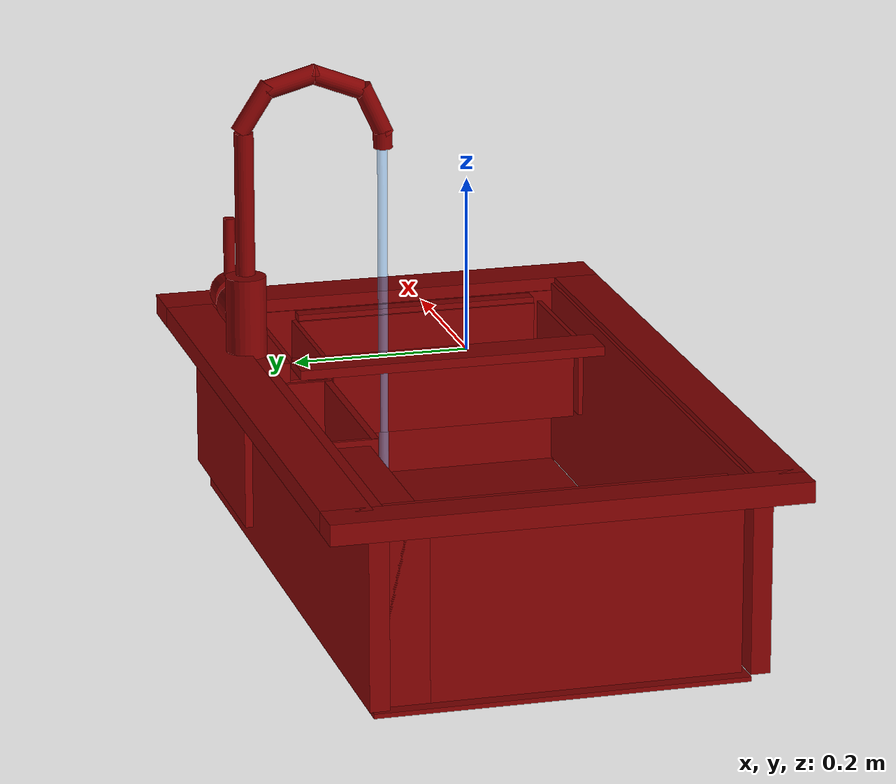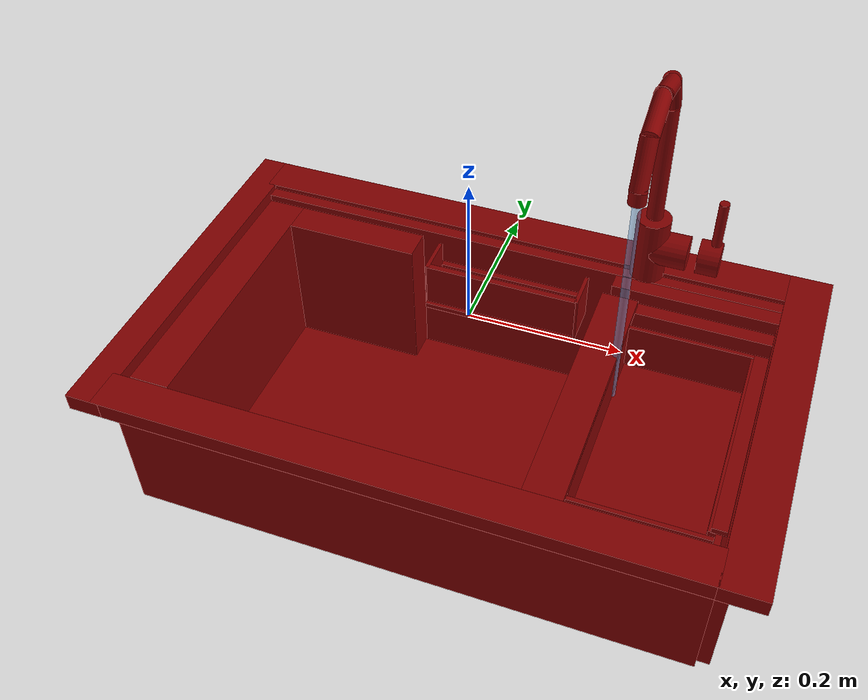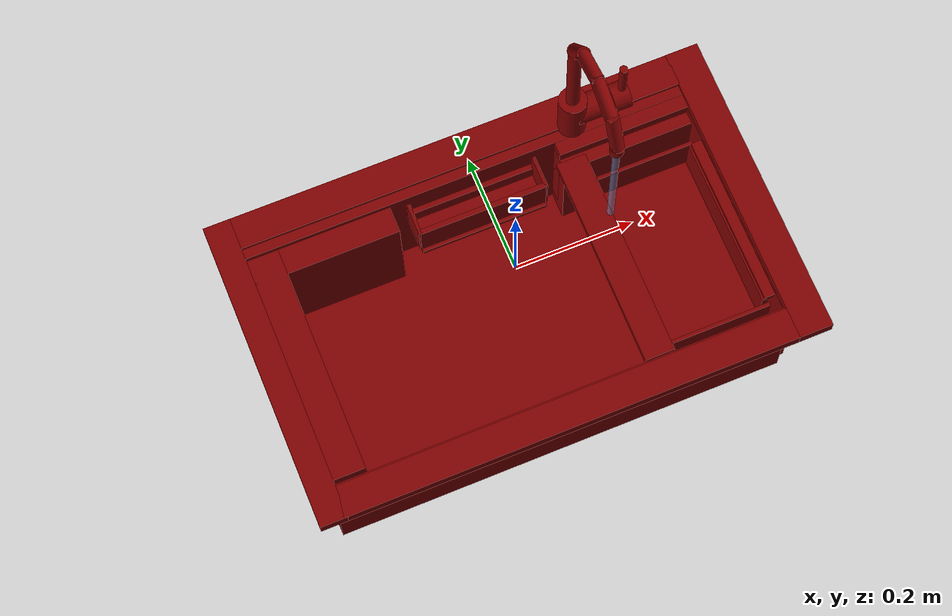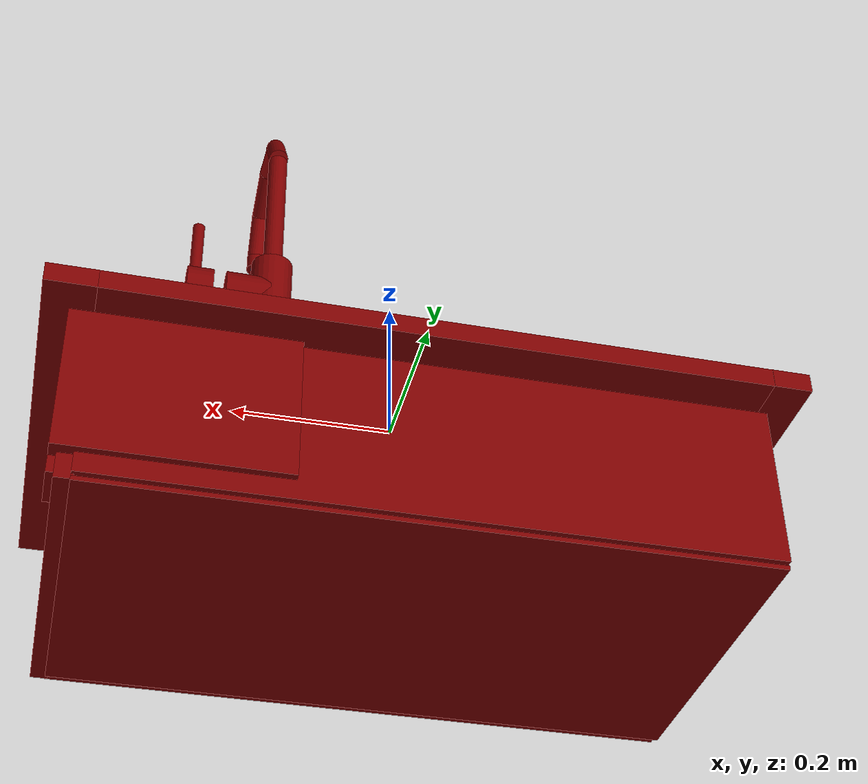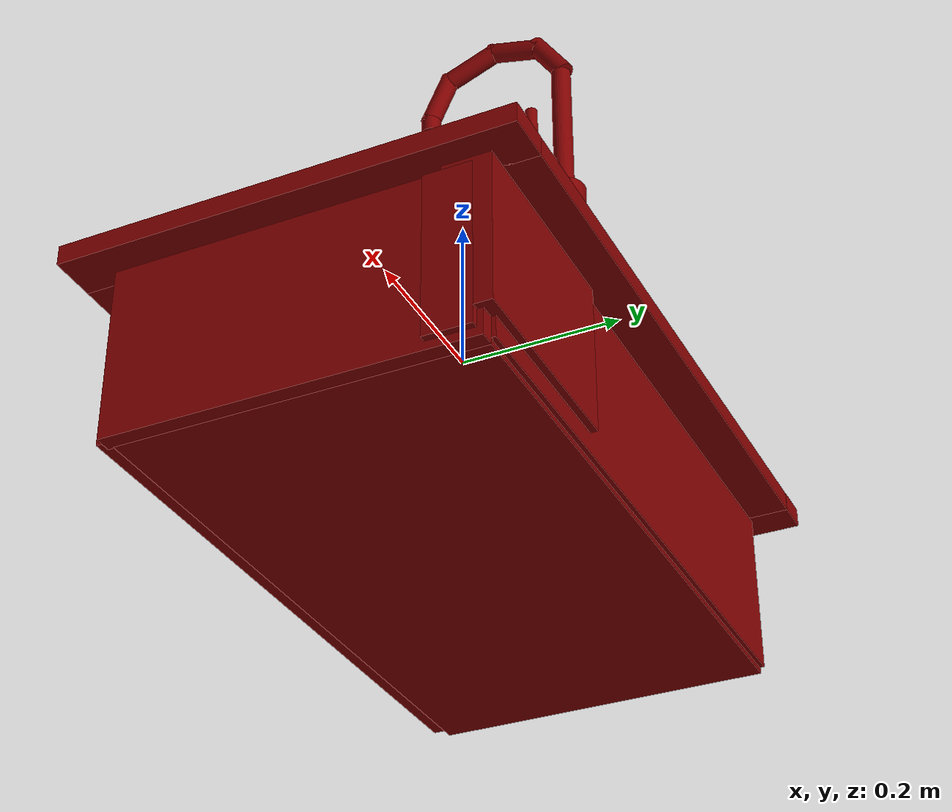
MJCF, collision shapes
<?xml version='1.0' encoding='UTF-8'?>
<mujoco model="model">
  <option timestep="0.002" gravity="0.0 0.0 -9.81"/>
  <compiler angle="radian"/>
  <asset>
    <mesh file="visuals/handle.obj" name="handle_vis"/>
    <mesh file="visuals/Body001.obj" name="Body001_vis"/>
    <mesh file="visuals/Shelf001.obj" name="Shelf001_vis"/>
    <mesh file="visuals/Shelf002.obj" name="Shelf002_vis"/>
    <mesh file="visuals/spout.obj" name="spout_vis"/>
    <texture file="visuals/T_BC001.png" name="Body001_material" type="2d"/>
    <material name="Body001_material" rgba="1 1 1 1.0" texture="Body001_material" shininess="0.141421377658844" specular="1"/>
    <texture file="visuals/T_BC001.png" name="handle_material" type="2d"/>
    <material name="handle_material" rgba="1 1 1 1.0" texture="handle_material" shininess="0.141421377658844" specular="1"/>
    <texture file="visuals/T_BC001.png" name="Shelf001_material" type="2d"/>
    <material name="Shelf001_material" rgba="1 1 1 1.0" texture="Shelf001_material" shininess="0.141421377658844" specular="1"/>
    <texture file="visuals/T_BC001.png" name="Shelf002_material" type="2d"/>
    <material name="Shelf002_material" rgba="1 1 1 1.0" texture="Shelf002_material" shininess="0.141421377658844" specular="1"/>
    <texture file="visuals/T_BC001.png" name="spout_material" type="2d"/>
    <material name="spout_material" rgba="1 1 1 1.0" texture="spout_material" shininess="0.141421377658844" specular="1"/>
  </asset>
  <default>
    <default class="visual">
      <geom conaffinity="0" contype="0" group="1" type="mesh"/>
    </default>
    <default class="collision">
      <geom group="0" rgba="0.5 0 0 0.5" solimp="0.998 0.998 0.001" solref="0.001 2"/>
    </default>
    <default class="spawn">
      <geom group="0" rgba="1 1 1 0.5" contype="0" conaffinity="0"/>
      <site group="0" rgba="1 1 1 0.5"/>
    </default>
    <default class="region">
      <geom group="1" conaffinity="0" contype="0" rgba="0 1 0 0"/>
    </default>
  </default>
  <worldbody>
    <body>
      <body name="object">
        <geom mesh="Body001_vis" type="mesh" solimp="0.998 0.998 0.001" solref="0.001 1" friction="0.95 0.3 0.1" class="visual" material="Body001_material"/>
        <geom class="collision" type="box" pos="-0.41402581 -0.00023080 -0.05207147" size="0.022894691675901413 0.2682405114173889 0.012045697309076786" quat="1.0 0.0 0.0 0.0"/>
        <geom class="collision" type="box" pos="0.40795222 -0.00023081 -0.05207147" size="0.028964372351765633 0.26824042201042175 0.012045692652463913" quat="1.0 0.0 0.0 0.0"/>
        <geom class="collision" type="box" pos="-0.01061450 -0.24163963 -0.05207147" size="0.3914196491241455 0.02683018147945404 0.01204568613320589" quat="1.0 0.0 0.0 0.0"/>
        <geom class="collision" type="box" pos="-0.01061450 0.23987053 -0.05207147" size="0.3914194405078888 0.027941973879933357 0.012045681476593018" quat="1.0 0.0 0.0 0.0"/>
        <geom class="collision" type="box" pos="-0.01061450 -0.22191751 -0.15760472" size="0.3914192318916321 0.011272481642663479 0.11095090955495834" quat="1.0 0.0 0.0 0.0"/>
        <geom class="collision" type="box" pos="0.38790286 -0.00379841 -0.16528009" size="0.010467687621712685 0.21606667339801788 0.10984964668750763" quat="1.0 0.0 0.0 0.0"/>
        <geom class="collision" type="box" pos="-0.36811498 0.00235081 -0.16112319" size="0.03185322880744934 0.203094482421875 0.10391531884670258" quat="1.0 0.0 0.0 0.0"/>
        <geom class="collision" type="box" pos="-0.01061420 0.00046252 -0.27352744" size="0.39141860604286194 0.2120686024427414 0.002776971086859703" quat="1.0 0.0 0.0 0.0"/>
        <geom class="collision" type="box" pos="-0.01061450 0.20614104 -0.15760472" size="0.3914184272289276 0.011272456496953964 0.11095070838928223" quat="1.0 0.0 0.0 0.0"/>
        <geom class="collision" type="cylinder" pos="0.18741572 0.21382920 0.00228175" size="0.02383415773510933 0.04755035787820816" quat="1.0 0.0 0.0 0.0"/>
        <geom class="collision" type="cylinder" pos="0.21505156 0.21382920 0.00228175" size="0.02383415773510933 0.024705450981855392" quat="0.7071068286895752 -0.0 0.7071067690849304 0.0"/>
        <geom class="collision" type="box" pos="-0.27097130 0.17762549 -0.16112319" size="0.12899693846702576 0.027818942442536354 0.1039150133728981" quat="1.0 0.0 0.0 0.0"/>
        <geom class="collision" type="box" pos="0.27775401 0.17762549 -0.16678700" size="0.12899692356586456 0.027818936854600906 0.09825118631124496" quat="1.0 0.0 0.0 0.0"/>
        <geom class="collision" type="box" pos="0.27775401 0.19877374 -0.14603704" size="0.12899689376354218 0.02781892940402031 0.09825116395950317" quat="1.0 0.0 0.0 0.0"/>
        <body name="handle">
          <joint axis="1.0 0.0 0.0" pos="0.26993331 0.21191886 0.00368081" limited="true" name="handle_temp_joint" type="hinge" range="-0.7853981633974483 0.7853981633974483" damping="0.5" frictionloss="1" armature="2"/>
          <joint axis="0.0 1.0 0.0" pos="0.26993331 0.21191886 0.00368081" limited="true" name="handle_joint" type="hinge" range="0 0.5" damping="0.5" frictionloss="1" armature="2"/>
          <geom mesh="handle_vis" type="mesh" solimp="0.998 0.998 0.001" solref="0.001 1" friction="0.95 0.3 0.1" class="visual" material="handle_material"/>
          <geom class="collision" type="cylinder" pos="0.26889989 0.21159852 0.00439400" size="0.02383415773510933 0.014818627387285233" quat="0.7071068286895752 -0.0 0.7071067690849304 0.0"/>
          <geom name="handle_main" class="collision" type="cylinder" pos="0.27432001 0.21330808 0.06082442" size="0.006863738875836134 0.03465331345796585" quat="1.0 0.0 0.0 0.0"/>
        </body>
        <body name="Shelf001">
          <joint axis="0.0 0.0 1.0" pos="0.26770413 -0.03321151 -0.10938835" limited="true" name="Shelf001_joint" range="0.0 0.06" type="slide" damping="1" frictionloss="1" armature=".01" stiffness="0.05"/>
          <geom mesh="Shelf001_vis" type="mesh" solimp="0.998 0.998 0.001" solref="0.001 1" friction="0.95 0.3 0.1" class="visual" material="Shelf001_material"/>
          <geom class="collision" type="box" pos="0.16404225 -0.02255300 -0.06089588" size="0.025579331442713737 0.18334241211414337 0.005609891843050718" quat="1.0 0.0 0.0 0.0"/>
          <geom class="collision" type="box" pos="0.27087563 -0.03479288 -0.14149196" size="0.08489122241735458 0.14692017436027527 0.010312174446880817" quat="1.0 0.0 0.0 0.0"/>
          <geom class="collision" type="box" pos="0.18675058 -0.03535408 -0.10815577" size="0.0028710034675896168 0.14635898172855377 0.045173279941082" quat="1.0 0.0 0.0 0.0"/>
          <geom class="collision" type="box" pos="0.35946745 -0.03535408 -0.10815577" size="0.004827061202377081 0.14635898172855377 0.045173279941082" quat="1.0 0.0 0.0 0.0"/>
          <geom class="collision" type="box" pos="0.27484369 0.11546270 -0.10815577" size="0.0887058898806572 0.002871009986847639 0.045173279941082" quat="1.0 0.0 0.0 0.0"/>
          <geom class="collision" type="box" pos="0.27484366 -0.19101422 -0.10815577" size="0.0887058898806572 0.002871009986847639 0.045173279941082" quat="1.0 0.0 0.0 0.0"/>
          <geom class="collision" type="box" pos="0.36737180 -0.03535408 -0.06021336" size="0.009337583556771278 0.14635898172855377 0.004192819818854332" quat="1.0 0.0 0.0 0.0"/>
        </body>
        <body name="Shelf002">
          <joint axis="0.0 0.0 1.0" pos="-0.00150317 0.17703077 -0.09450805" limited="true" name="Shelf002_joint" range="0.0 0.06" type="slide" damping="1" frictionloss="1" armature=".01" stiffness="0.05"/>
          <geom mesh="Shelf002_vis" type="mesh" solimp="0.998 0.998 0.001" solref="0.001 1" friction="0.95 0.3 0.1" class="visual" material="Shelf002_material"/>
          <geom class="collision" type="box" pos="-0.00233199 0.15722592 -0.12684396" size="0.11054285615682602 0.03088262863457203 0.0038003886584192514" quat="1.0 0.0 0.0 0.0"/>
          <geom class="collision" type="box" pos="-0.00233199 0.13634940 -0.09363169" size="0.11054285615682602 0.00439953850582242 0.034315261989831924" quat="1.0 0.0 0.0 0.0"/>
          <geom class="collision" type="box" pos="-0.11227445 0.16119415 -0.09363169" size="0.002740363823249936 0.02775304764509201 0.034315261989831924" quat="1.0 0.0 0.0 0.0"/>
          <geom class="collision" type="box" pos="0.10907755 0.16119415 -0.09363169" size="0.002740363823249936 0.02775304764509201 0.034315261989831924" quat="1.0 0.0 0.0 0.0"/>
          <geom class="collision" type="box" pos="-0.00233199 0.18889587 -0.11126097" size="0.11054285615682602 0.00439953850582242 0.01668599247932434" quat="1.0 0.0 0.0 0.0"/>
        </body>
        <body name="spout">
          <joint axis="0.0 0.0 1.0" pos="0.18720418 0.21321146 0.16918962" limited="true" name="spout_joint" range="-0.7853981633974483 0.7853981633974483" type="hinge" damping="10"/>
          <site type="cylinder" rgba="0.5 0.75 1 0.5" size="0.0057831453159451485 0.23046548664569855" pos="0.18744722 0.05002866 -0.02274617" name="water"/>
          <geom mesh="spout_vis" type="mesh" solimp="0.998 0.998 0.001" solref="0.001 1" friction="0.95 0.3 0.1" class="visual" material="spout_material"/>
          <geom class="collision" type="cylinder" pos="0.18700486 0.21382920 0.13669544" size="0.011294265277683735 0.08440812677145004" quat="1.0 0.0 0.0 0.0" name="spout_main"/>
          <geom class="collision" type="cylinder" pos="0.18700486 0.20095083 0.24846722" size="0.011294265277683735 0.032382093369960785" quat="0.958923876285553 0.2836635708808899 0.0 0.0"/>
          <geom class="collision" type="cylinder" pos="0.18700486 0.15753220 0.27737826" size="0.011294265277683735 0.03238209709525108" quat="0.7945126295089722 0.6072476506233215 0.0 0.0"/>
          <geom class="collision" type="cylinder" pos="0.18700486 0.10506007 0.27439380" size="0.011294265277683735 0.032382093369960785" quat="0.564933717250824 0.8251363039016724 0.0 0.0"/>
          <geom class="collision" type="cylinder" pos="0.18700486 0.06076001 0.23716174" size="0.011294265277683735 0.032382093369960785" quat="0.21412184834480286 0.9768069386482239 0.0 0.0"/>
          <geom class="collision" type="cylinder" pos="0.18700486 0.04923241 0.20282787" size="0.011294265277683735 0.011119321919977665" quat="1.0 0.0 0.0 0.0"/>
        </body>
        <geom class="region" name="reg_basin" type="box" pos="-0.09019965499999999 -0.026884485 -0.155341335" size="0.223737305 0.128664245 0.11407146500000001"/>
        <geom class="region" name="reg_main" type="box" pos="9.999999994736442e-09 1.9999999989472883e-08 -0.16640881000000002" size="0.43817593 0.26980756 0.12803651"/>
      </body>
    </body>
  </worldbody>
  <actuator>
    <motor name="handle_joint_actuator" joint="handle_joint" gear="10"/>
    <motor name="handle_temp_joint_actuator" joint="handle_temp_joint" gear="10"/>
    <motor name="Shelf001_joint_actuator" joint="Shelf001_joint" gear="10"/>
    <motor name="Shelf002_joint_actuator" joint="Shelf002_joint" gear="10"/>
    <motor name="spout_joint_actuator" joint="spout_joint" gear="10"/>
  </actuator>
</mujoco>
